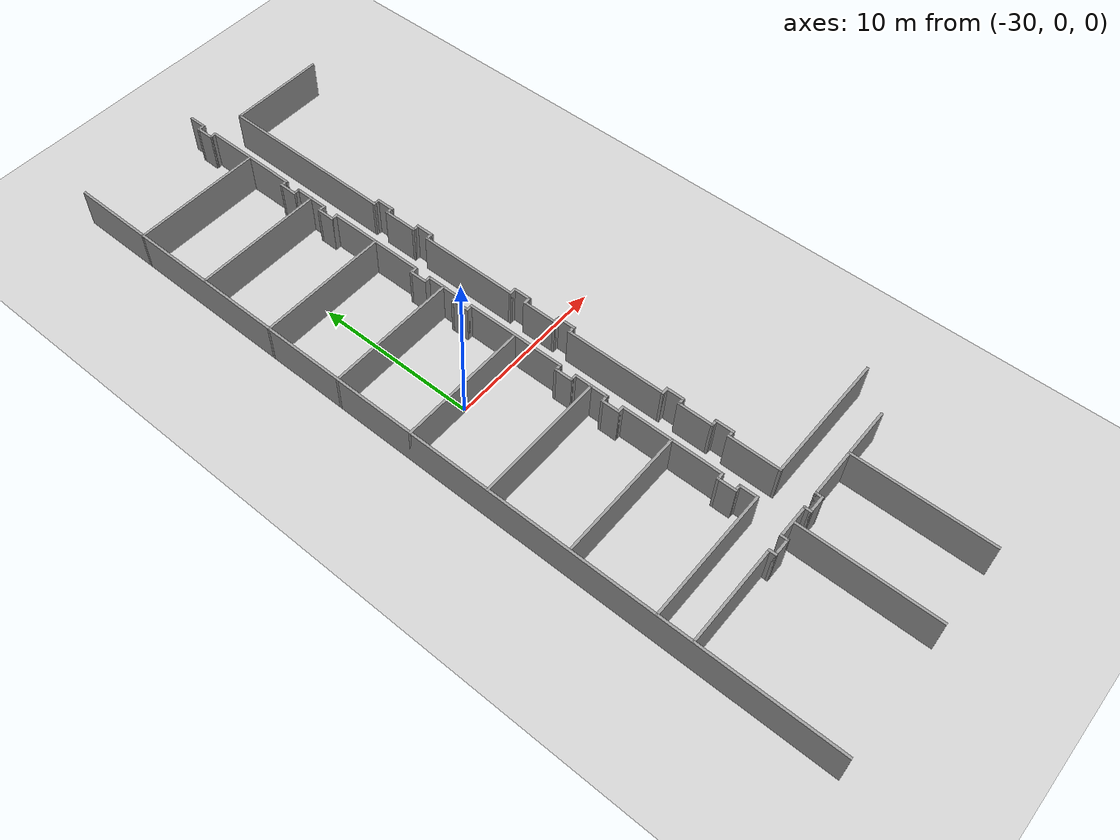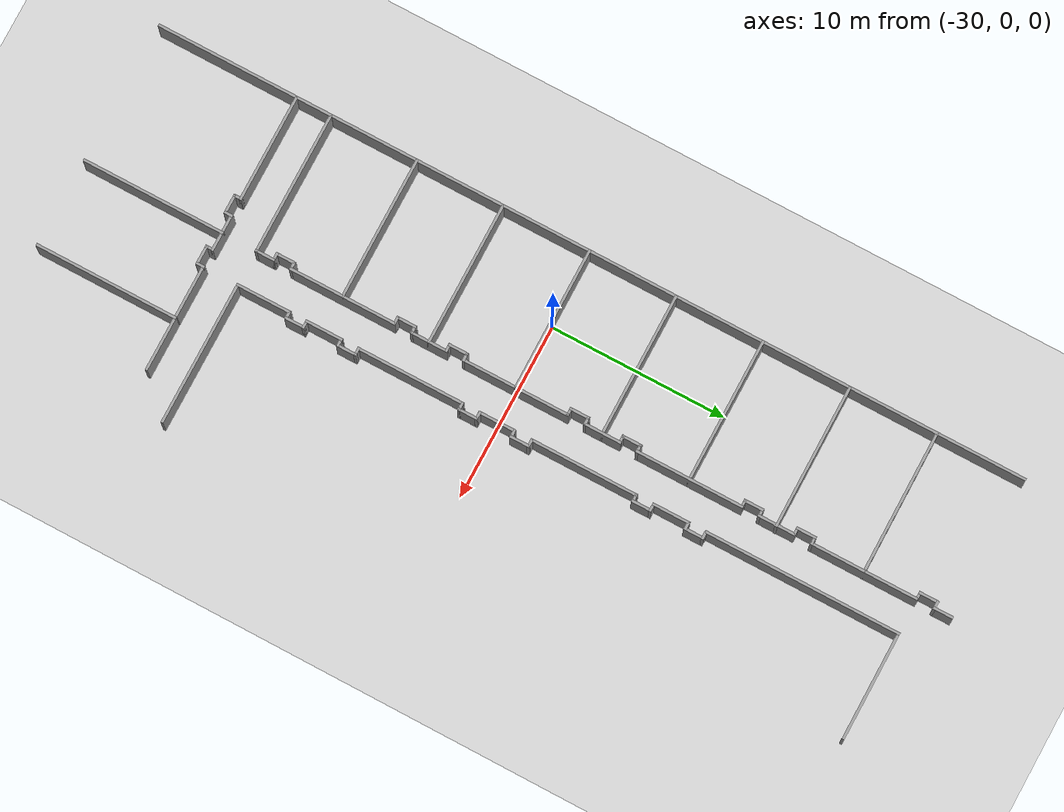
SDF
<sdf version="1.7">
 <world name="default">
  <model name="ground_plane">
   <static>1</static>
   <link name="link">
    <collision name="collision">
     <geometry><plane><normal>0 0 1</normal><size>100 100</size></plane></geometry>
     <surface>
      <contact><collide_bitmask>65535</collide_bitmask></contact>
      <friction><ode><mu>100</mu><mu2>50</mu2></ode></friction>
     </surface>
    </collision>
    <visual name="visual">
     <cast_shadows>0</cast_shadows>
     <geometry><plane><normal>0 0 1</normal><size>100 100</size></plane></geometry>
     <material>
      <script><uri>file://media/materials/scripts/gazebo.material</uri><name>Gazebo/Grey</name></script>
     </material>
    </visual>
   </link>
  </model>
  <model name="hotel_floor">
   <link name="Wall_10">
    <collision name="Wall_10_Collision">
     <geometry><box><size>8.15 0.15 2.5</size></box></geometry>
     <pose>0 0 1.25 0 -0 0</pose>
    </collision>
    <visual name="Wall_10_Visual">
     <pose>0 0 1.25 0 -0 0</pose>
     <geometry><box><size>8.15 0.15 2.5</size></box></geometry>
     <material>
      <script><uri>file://media/materials/scripts/gazebo.material</uri><name>Gazebo/Grey</name></script>
      <ambient>1 1 1 1</ambient>
     </material>
     <meta><layer>0</layer></meta>
    </visual>
    <pose>-30 -15 0 0 -0 3.14159</pose>
   </link>
   <link name="Wall_100">
    <collision name="Wall_100_Collision">
     <geometry><box><size>8.15 0.15 2.5</size></box></geometry>
     <pose>0 0 1.25 0 -0 0</pose>
    </collision>
    <visual name="Wall_100_Visual">
     <pose>0 0 1.25 0 -0 0</pose>
     <geometry><box><size>8.15 0.15 2.5</size></box></geometry>
     <material>
      <script><uri>file://media/materials/scripts/gazebo.material</uri><name>Gazebo/Grey</name></script>
      <ambient>1 1 1 1</ambient>
     </material>
     <meta><layer>0</layer></meta>
    </visual>
    <pose>-30 -10 0 0 -0 3.14159</pose>
   </link>
   <link name="Wall_102">
    <collision name="Wall_102_Collision">
     <geometry><box><size>8.15 0.15 2.5</size></box></geometry>
     <pose>0 0 1.25 0 -0 0</pose>
    </collision>
    <visual name="Wall_102_Visual">
     <pose>0 0 1.25 0 -0 0</pose>
     <geometry><box><size>8.15 0.15 2.5</size></box></geometry>
     <material>
      <script><uri>file://media/materials/scripts/gazebo.material</uri><name>Gazebo/Grey</name></script>
      <ambient>1 1 1 1</ambient>
     </material>
     <meta><layer>0</layer></meta>
    </visual>
    <pose>-30 -5 0 0 -0 3.14159</pose>
   </link>
   <link name="Wall_104">
    <collision name="Wall_104_Collision">
     <geometry><box><size>8.15 0.15 2.5</size></box></geometry>
     <pose>0 0 1.25 0 -0 0</pose>
    </collision>
    <visual name="Wall_104_Visual">
     <pose>0 0 1.25 0 -0 0</pose>
     <geometry><box><size>8.15 0.15 2.5</size></box></geometry>
     <material>
      <script><uri>file://media/materials/scripts/gazebo.material</uri><name>Gazebo/Grey</name></script>
      <ambient>1 1 1 1</ambient>
     </material>
     <meta><layer>0</layer></meta>
    </visual>
    <pose>-30 0 0 0 -0 3.14159</pose>
   </link>
   <link name="Wall_106">
    <collision name="Wall_106_Collision">
     <geometry><box><size>8.15 0.15 2.5</size></box></geometry>
     <pose>0 0 1.25 0 -0 0</pose>
    </collision>
    <visual name="Wall_106_Visual">
     <pose>0 0 1.25 0 -0 0</pose>
     <geometry><box><size>8.15 0.15 2.5</size></box></geometry>
     <material>
      <script><uri>file://media/materials/scripts/gazebo.material</uri><name>Gazebo/Grey</name></script>
      <ambient>1 1 1 1</ambient>
     </material>
     <meta><layer>0</layer></meta>
    </visual>
    <pose>-30 5 0 0 -0 3.14159</pose>
   </link>
   <link name="Wall_108">
    <collision name="Wall_108_Collision">
     <geometry><box><size>8.15 0.15 2.5</size></box></geometry>
     <pose>0 0 1.25 0 -0 0</pose>
    </collision>
    <visual name="Wall_108_Visual">
     <pose>0 0 1.25 0 -0 0</pose>
     <geometry><box><size>8.15 0.15 2.5</size></box></geometry>
     <material>
      <script><uri>file://media/materials/scripts/gazebo.material</uri><name>Gazebo/Grey</name></script>
      <ambient>1 1 1 1</ambient>
     </material>
     <meta><layer>0</layer></meta>
    </visual>
    <pose>-30 10 0 0 -0 3.14159</pose>
   </link>
   <link name="Wall_110">
    <collision name="Wall_110_Collision">
     <geometry><box><size>8.15 0.15 2.5</size></box></geometry>
     <pose>0 0 1.25 0 -0 0</pose>
    </collision>
    <visual name="Wall_110_Visual">
     <pose>0 0 1.25 0 -0 0</pose>
     <geometry><box><size>8.15 0.15 2.5</size></box></geometry>
     <material>
      <script><uri>file://media/materials/scripts/gazebo.material</uri><name>Gazebo/Grey</name></script>
      <ambient>1 1 1 1</ambient>
     </material>
     <meta><layer>0</layer></meta>
    </visual>
    <pose>-29.9799 15 0 0 -0 3.14159</pose>
   </link>
   <link name="Wall_112">
    <collision name="Wall_112_Collision">
     <geometry><box><size>8.15 0.15 2.5</size></box></geometry>
     <pose>0 0 1.25 0 -0 0</pose>
    </collision>
    <visual name="Wall_112_Visual">
     <pose>0 0 1.25 0 -0 0</pose>
     <geometry><box><size>8.15 0.15 2.5</size></box></geometry>
     <material>
      <script><uri>file://media/materials/scripts/gazebo.material</uri><name>Gazebo/Grey</name></script>
      <ambient>1 1 1 1</ambient>
     </material>
     <meta><layer>0</layer></meta>
    </visual>
    <pose>-30 20 0 0 -0 3.14159</pose>
   </link>
   <link name="Wall_142">
    <collision name="Wall_142_Collision">
     <geometry><box><size>1.15 0.15 2.5</size></box></geometry>
     <pose>0 0 1.25 0 -0 0</pose>
    </collision>
    <visual name="Wall_142_Visual">
     <pose>0 0 1.25 0 -0 0</pose>
     <geometry><box><size>1.15 0.15 2.5</size></box></geometry>
     <material>
      <script><uri>file://media/materials/scripts/gazebo.material</uri><name>Gazebo/Grey</name></script>
      <ambient>1 1 1 1</ambient>
     </material>
     <meta><layer>0</layer></meta>
    </visual>
    <pose>-26 24.5 0 0 -0 -1.5708</pose>
   </link>
   <link name="Wall_144">
    <collision name="Wall_144_Collision">
     <geometry><box><size>0.5 0.15 2.5</size></box></geometry>
     <pose>0 0 1.25 0 -0 0</pose>
    </collision>
    <visual name="Wall_144_Visual">
     <pose>0 0 1.25 0 -0 0</pose>
     <geometry><box><size>0.5 0.15 2.5</size></box></geometry>
     <material>
      <script><uri>file://media/materials/scripts/gazebo.material</uri><name>Gazebo/Grey</name></script>
      <ambient>1 1 1 1</ambient>
     </material>
     <meta><layer>0</layer></meta>
    </visual>
    <pose>-26.175 24 0 0 -0 3.14159</pose>
   </link>
   <link name="Wall_145">
    <collision name="Wall_145_Collision">
     <geometry><box><size>1.15 0.15 2.5</size></box></geometry>
     <pose>0 0 1.25 0 -0 0</pose>
    </collision>
    <visual name="Wall_145_Visual">
     <pose>0 0 1.25 0 -0 0</pose>
     <geometry><box><size>1.15 0.15 2.5</size></box></geometry>
     <material>
      <script><uri>file://media/materials/scripts/gazebo.material</uri><name>Gazebo/Grey</name></script>
      <ambient>1 1 1 1</ambient>
     </material>
     <meta><layer>0</layer></meta>
    </visual>
    <pose>-26.35 23.5 0 0 -0 -1.5708</pose>
   </link>
   <link name="Wall_147">
    <collision name="Wall_147_Collision">
     <geometry><box><size>0.5 0.15 2.5</size></box></geometry>
     <pose>0 0 1.25 0 -0 0</pose>
    </collision>
    <visual name="Wall_147_Visual">
     <pose>0 0 1.25 0 -0 0</pose>
     <geometry><box><size>0.5 0.15 2.5</size></box></geometry>
     <material>
      <script><uri>file://media/materials/scripts/gazebo.material</uri><name>Gazebo/Grey</name></script>
      <ambient>1 1 1 1</ambient>
     </material>
     <meta><layer>0</layer></meta>
    </visual>
    <pose>-26.175 23 0 0 -0 0</pose>
   </link>
   <link name="Wall_148">
    <collision name="Wall_148_Collision">
     <geometry><box><size>6.15 0.15 2.5</size></box></geometry>
     <pose>0 0 1.25 0 -0 0</pose>
    </collision>
    <visual name="Wall_148_Visual">
     <pose>0 0 1.25 0 -0 0</pose>
     <geometry><box><size>6.15 0.15 2.5</size></box></geometry>
     <material>
      <script><uri>file://media/materials/scripts/gazebo.material</uri><name>Gazebo/Grey</name></script>
      <ambient>1 1 1 1</ambient>
     </material>
     <meta><layer>0</layer></meta>
    </visual>
    <pose>-26 20 0 0 -0 -1.5708</pose>
   </link>
   <link name="Wall_150">
    <collision name="Wall_150_Collision">
     <geometry><box><size>0.5 0.15 2.5</size></box></geometry>
     <pose>0 0 1.25 0 -0 0</pose>
    </collision>
    <visual name="Wall_150_Visual">
     <pose>0 0 1.25 0 -0 0</pose>
     <geometry><box><size>0.5 0.15 2.5</size></box></geometry>
     <material>
      <script><uri>file://media/materials/scripts/gazebo.material</uri><name>Gazebo/Grey</name></script>
      <ambient>1 1 1 1</ambient>
     </material>
     <meta><layer>0</layer></meta>
    </visual>
    <pose>-26.175 17 0 0 -0 3.14159</pose>
   </link>
   <link name="Wall_151">
    <collision name="Wall_151_Collision">
     <geometry><box><size>1.15 0.15 2.5</size></box></geometry>
     <pose>0 0 1.25 0 -0 0</pose>
    </collision>
    <visual name="Wall_151_Visual">
     <pose>0 0 1.25 0 -0 0</pose>
     <geometry><box><size>1.15 0.15 2.5</size></box></geometry>
     <material>
      <script><uri>file://media/materials/scripts/gazebo.material</uri><name>Gazebo/Grey</name></script>
      <ambient>1 1 1 1</ambient>
     </material>
     <meta><layer>0</layer></meta>
    </visual>
    <pose>-26.35 16.5 0 0 -0 -1.5708</pose>
   </link>
   <link name="Wall_153">
    <collision name="Wall_153_Collision">
     <geometry><box><size>0.5 0.15 2.5</size></box></geometry>
     <pose>0 0 1.25 0 -0 0</pose>
    </collision>
    <visual name="Wall_153_Visual">
     <pose>0 0 1.25 0 -0 0</pose>
     <geometry><box><size>0.5 0.15 2.5</size></box></geometry>
     <material>
      <script><uri>file://media/materials/scripts/gazebo.material</uri><name>Gazebo/Grey</name></script>
      <ambient>1 1 1 1</ambient>
     </material>
     <meta><layer>0</layer></meta>
    </visual>
    <pose>-26.175 16 0 0 -0 0</pose>
   </link>
   <link name="Wall_154">
    <collision name="Wall_154_Collision">
     <geometry><box><size>2.15 0.15 2.5</size></box></geometry>
     <pose>0 0 1.25 0 -0 0</pose>
    </collision>
    <visual name="Wall_154_Visual">
     <pose>0 0 1.25 0 -0 0</pose>
     <geometry><box><size>2.15 0.15 2.5</size></box></geometry>
     <material>
      <script><uri>file://media/materials/scripts/gazebo.material</uri><name>Gazebo/Grey</name></script>
      <ambient>1 1 1 1</ambient>
     </material>
     <meta><layer>0</layer></meta>
    </visual>
    <pose>-26 15 0 0 -0 -1.5708</pose>
   </link>
   <link name="Wall_159">
    <collision name="Wall_159_Collision">
     <geometry><box><size>0.5 0.15 2.5</size></box></geometry>
     <pose>0 0 1.25 0 -0 0</pose>
    </collision>
    <visual name="Wall_159_Visual">
     <pose>0 0 1.25 0 -0 0</pose>
     <geometry><box><size>0.5 0.15 2.5</size></box></geometry>
     <material>
      <script><uri>file://media/materials/scripts/gazebo.material</uri><name>Gazebo/Grey</name></script>
      <ambient>1 1 1 1</ambient>
     </material>
     <meta><layer>0</layer></meta>
    </visual>
    <pose>-26.175 14 0 0 -0 3.14159</pose>
   </link>
   <link name="Wall_16">
    <collision name="Wall_16_Collision">
     <geometry><box><size>8.15 0.15 2.5</size></box></geometry>
     <pose>0 0 1.25 0 -0 0</pose>
    </collision>
    <visual name="Wall_16_Visual">
     <pose>0 0 1.25 0 -0 0</pose>
     <geometry><box><size>8.15 0.15 2.5</size></box></geometry>
     <material>
      <script><uri>file://media/materials/scripts/gazebo.material</uri><name>Gazebo/Grey</name></script>
      <ambient>1 1 1 1</ambient>
     </material>
     <meta><layer>0</layer></meta>
    </visual>
    <pose>-20 -15 0 0 -0 3.14159</pose>
   </link>
   <link name="Wall_160">
    <collision name="Wall_160_Collision">
     <geometry><box><size>1.15 0.15 2.5</size></box></geometry>
     <pose>0 0 1.25 0 -0 0</pose>
    </collision>
    <visual name="Wall_160_Visual">
     <pose>0 0 1.25 0 -0 0</pose>
     <geometry><box><size>1.15 0.15 2.5</size></box></geometry>
     <material>
      <script><uri>file://media/materials/scripts/gazebo.material</uri><name>Gazebo/Grey</name></script>
      <ambient>1 1 1 1</ambient>
     </material>
     <meta><layer>0</layer></meta>
    </visual>
    <pose>-26.35 13.5 0 0 -0 -1.5708</pose>
   </link>
   <link name="Wall_162">
    <collision name="Wall_162_Collision">
     <geometry><box><size>0.5 0.15 2.5</size></box></geometry>
     <pose>0 0 1.25 0 -0 0</pose>
    </collision>
    <visual name="Wall_162_Visual">
     <pose>0 0 1.25 0 -0 0</pose>
     <geometry><box><size>0.5 0.15 2.5</size></box></geometry>
     <material>
      <script><uri>file://media/materials/scripts/gazebo.material</uri><name>Gazebo/Grey</name></script>
      <ambient>1 1 1 1</ambient>
     </material>
     <meta><layer>0</layer></meta>
    </visual>
    <pose>-26.175 13 0 0 -0 0</pose>
   </link>
   <link name="Wall_163">
    <collision name="Wall_163_Collision">
     <geometry><box><size>6.15 0.15 2.5</size></box></geometry>
     <pose>0 0 1.25 0 -0 0</pose>
    </collision>
    <visual name="Wall_163_Visual">
     <pose>0 0 1.25 0 -0 0</pose>
     <geometry><box><size>6.15 0.15 2.5</size></box></geometry>
     <material>
      <script><uri>file://media/materials/scripts/gazebo.material</uri><name>Gazebo/Grey</name></script>
      <ambient>1 1 1 1</ambient>
     </material>
     <meta><layer>0</layer></meta>
    </visual>
    <pose>-26 10 0 0 -0 -1.5708</pose>
   </link>
   <link name="Wall_165">
    <collision name="Wall_165_Collision">
     <geometry><box><size>0.5 0.15 2.5</size></box></geometry>
     <pose>0 0 1.25 0 -0 0</pose>
    </collision>
    <visual name="Wall_165_Visual">
     <pose>0 0 1.25 0 -0 0</pose>
     <geometry><box><size>0.5 0.15 2.5</size></box></geometry>
     <material>
      <script><uri>file://media/materials/scripts/gazebo.material</uri><name>Gazebo/Grey</name></script>
      <ambient>1 1 1 1</ambient>
     </material>
     <meta><layer>0</layer></meta>
    </visual>
    <pose>-26.175 7 0 0 -0 3.14159</pose>
   </link>
   <link name="Wall_166">
    <collision name="Wall_166_Collision">
     <geometry><box><size>1.15 0.15 2.5</size></box></geometry>
     <pose>0 0 1.25 0 -0 0</pose>
    </collision>
    <visual name="Wall_166_Visual">
     <pose>0 0 1.25 0 -0 0</pose>
     <geometry><box><size>1.15 0.15 2.5</size></box></geometry>
     <material>
      <script><uri>file://media/materials/scripts/gazebo.material</uri><name>Gazebo/Grey</name></script>
      <ambient>1 1 1 1</ambient>
     </material>
     <meta><layer>0</layer></meta>
    </visual>
    <pose>-26.35 6.5 0 0 -0 -1.5708</pose>
   </link>
   <link name="Wall_168">
    <collision name="Wall_168_Collision">
     <geometry><box><size>0.5 0.15 2.5</size></box></geometry>
     <pose>0 0 1.25 0 -0 0</pose>
    </collision>
    <visual name="Wall_168_Visual">
     <pose>0 0 1.25 0 -0 0</pose>
     <geometry><box><size>0.5 0.15 2.5</size></box></geometry>
     <material>
      <script><uri>file://media/materials/scripts/gazebo.material</uri><name>Gazebo/Grey</name></script>
      <ambient>1 1 1 1</ambient>
     </material>
     <meta><layer>0</layer></meta>
    </visual>
    <pose>-26.175 6 0 0 -0 0</pose>
   </link>
   <link name="Wall_169">
    <collision name="Wall_169_Collision">
     <geometry><box><size>2.15 0.15 2.5</size></box></geometry>
     <pose>0 0 1.25 0 -0 0</pose>
    </collision>
    <visual name="Wall_169_Visual">
     <pose>0 0 1.25 0 -0 0</pose>
     <geometry><box><size>2.15 0.15 2.5</size></box></geometry>
     <material>
      <script><uri>file://media/materials/scripts/gazebo.material</uri><name>Gazebo/Grey</name></script>
      <ambient>1 1 1 1</ambient>
     </material>
     <meta><layer>0</layer></meta>
    </visual>
    <pose>-26 5 0 0 -0 -1.5708</pose>
   </link>
   <link name="Wall_174">
    <collision name="Wall_174_Collision">
     <geometry><box><size>0.5 0.15 2.5</size></box></geometry>
     <pose>0 0 1.25 0 -0 0</pose>
    </collision>
    <visual name="Wall_174_Visual">
     <pose>0 0 1.25 0 -0 0</pose>
     <geometry><box><size>0.5 0.15 2.5</size></box></geometry>
     <material>
      <script><uri>file://media/materials/scripts/gazebo.material</uri><name>Gazebo/Grey</name></script>
      <ambient>1 1 1 1</ambient>
     </material>
     <meta><layer>0</layer></meta>
    </visual>
    <pose>-26.175 4 0 0 -0 3.14159</pose>
   </link>
   <link name="Wall_175">
    <collision name="Wall_175_Collision">
     <geometry><box><size>1.15 0.15 2.5</size></box></geometry>
     <pose>0 0 1.25 0 -0 0</pose>
    </collision>
    <visual name="Wall_175_Visual">
     <pose>0 0 1.25 0 -0 0</pose>
     <geometry><box><size>1.15 0.15 2.5</size></box></geometry>
     <material>
      <script><uri>file://media/materials/scripts/gazebo.material</uri><name>Gazebo/Grey</name></script>
      <ambient>1 1 1 1</ambient>
     </material>
     <meta><layer>0</layer></meta>
    </visual>
    <pose>-26.35 3.5 0 0 -0 -1.5708</pose>
   </link>
   <link name="Wall_177">
    <collision name="Wall_177_Collision">
     <geometry><box><size>0.5 0.15 2.5</size></box></geometry>
     <pose>0 0 1.25 0 -0 0</pose>
    </collision>
    <visual name="Wall_177_Visual">
     <pose>0 0 1.25 0 -0 0</pose>
     <geometry><box><size>0.5 0.15 2.5</size></box></geometry>
     <material>
      <script><uri>file://media/materials/scripts/gazebo.material</uri><name>Gazebo/Grey</name></script>
      <ambient>1 1 1 1</ambient>
     </material>
     <meta><layer>0</layer></meta>
    </visual>
    <pose>-26.175 3 0 0 -0 0</pose>
   </link>
   <link name="Wall_178">
    <collision name="Wall_178_Collision">
     <geometry><box><size>6.15 0.15 2.5</size></box></geometry>
     <pose>0 0 1.25 0 -0 0</pose>
    </collision>
    <visual name="Wall_178_Visual">
     <pose>0 0 1.25 0 -0 0</pose>
     <geometry><box><size>6.15 0.15 2.5</size></box></geometry>
     <material>
      <script><uri>file://media/materials/scripts/gazebo.material</uri><name>Gazebo/Grey</name></script>
      <ambient>1 1 1 1</ambient>
     </material>
     <meta><layer>0</layer></meta>
    </visual>
    <pose>-26 0 0 0 -0 -1.5708</pose>
   </link>
   <link name="Wall_180">
    <collision name="Wall_180_Collision">
     <geometry><box><size>0.5 0.15 2.5</size></box></geometry>
     <pose>0 0 1.25 0 -0 0</pose>
    </collision>
    <visual name="Wall_180_Visual">
     <pose>0 0 1.25 0 -0 0</pose>
     <geometry><box><size>0.5 0.15 2.5</size></box></geometry>
     <material>
      <script><uri>file://media/materials/scripts/gazebo.material</uri><name>Gazebo/Grey</name></script>
      <ambient>1 1 1 1</ambient>
     </material>
     <meta><layer>0</layer></meta>
    </visual>
    <pose>-26.175 -3 0 0 -0 3.14159</pose>
   </link>
   <link name="Wall_181">
    <collision name="Wall_181_Collision">
     <geometry><box><size>1.15 0.15 2.5</size></box></geometry>
     <pose>0 0 1.25 0 -0 0</pose>
    </collision>
    <visual name="Wall_181_Visual">
     <pose>0 0 1.25 0 -0 0</pose>
     <geometry><box><size>1.15 0.15 2.5</size></box></geometry>
     <material>
      <script><uri>file://media/materials/scripts/gazebo.material</uri><name>Gazebo/Grey</name></script>
      <ambient>1 1 1 1</ambient>
     </material>
     <meta><layer>0</layer></meta>
    </visual>
    <pose>-26.35 -3.5 0 0 -0 -1.5708</pose>
   </link>
   <link name="Wall_183">
    <collision name="Wall_183_Collision">
     <geometry><box><size>0.5 0.15 2.5</size></box></geometry>
     <pose>0 0 1.25 0 -0 0</pose>
    </collision>
    <visual name="Wall_183_Visual">
     <pose>0 0 1.25 0 -0 0</pose>
     <geometry><box><size>0.5 0.15 2.5</size></box></geometry>
     <material>
      <script><uri>file://media/materials/scripts/gazebo.material</uri><name>Gazebo/Grey</name></script>
      <ambient>1 1 1 1</ambient>
     </material>
     <meta><layer>0</layer></meta>
    </visual>
    <pose>-26.175 -4 0 0 -0 0</pose>
   </link>
   <link name="Wall_184">
    <collision name="Wall_184_Collision">
     <geometry><box><size>2.15 0.15 2.5</size></box></geometry>
     <pose>0 0 1.25 0 -0 0</pose>
    </collision>
    <visual name="Wall_184_Visual">
     <pose>0 0 1.25 0 -0 0</pose>
     <geometry><box><size>2.15 0.15 2.5</size></box></geometry>
     <material>
      <script><uri>file://media/materials/scripts/gazebo.material</uri><name>Gazebo/Grey</name></script>
      <ambient>1 1 1 1</ambient>
     </material>
     <meta><layer>0</layer></meta>
    </visual>
    <pose>-26 -5 0 0 -0 -1.5708</pose>
   </link>
   <link name="Wall_186">
    <collision name="Wall_186_Collision">
     <geometry><box><size>0.5 0.15 2.5</size></box></geometry>
     <pose>0 0 1.25 0 -0 0</pose>
    </collision>
    <visual name="Wall_186_Visual">
     <pose>0 0 1.25 0 -0 0</pose>
     <geometry><box><size>0.5 0.15 2.5</size></box></geometry>
     <material>
      <script><uri>file://media/materials/scripts/gazebo.material</uri><name>Gazebo/Grey</name></script>
      <ambient>1 1 1 1</ambient>
     </material>
     <meta><layer>0</layer></meta>
    </visual>
    <pose>-26.175 -6 0 0 -0 3.14159</pose>
   </link>
   <link name="Wall_187">
    <collision name="Wall_187_Collision">
     <geometry><box><size>1.15 0.15 2.5</size></box></geometry>
     <pose>0 0 1.25 0 -0 0</pose>
    </collision>
    <visual name="Wall_187_Visual">
     <pose>0 0 1.25 0 -0 0</pose>
     <geometry><box><size>1.15 0.15 2.5</size></box></geometry>
     <material>
      <script><uri>file://media/materials/scripts/gazebo.material</uri><name>Gazebo/Grey</name></script>
      <ambient>1 1 1 1</ambient>
     </material>
     <meta><layer>0</layer></meta>
    </visual>
    <pose>-26.35 -6.5 0 0 -0 -1.5708</pose>
   </link>
   <link name="Wall_189">
    <collision name="Wall_189_Collision">
     <geometry><box><size>0.5 0.15 2.5</size></box></geometry>
     <pose>0 0 1.25 0 -0 0</pose>
    </collision>
    <visual name="Wall_189_Visual">
     <pose>0 0 1.25 0 -0 0</pose>
     <geometry><box><size>0.5 0.15 2.5</size></box></geometry>
     <material>
      <script><uri>file://media/materials/scripts/gazebo.material</uri><name>Gazebo/Grey</name></script>
      <ambient>1 1 1 1</ambient>
     </material>
     <meta><layer>0</layer></meta>
    </visual>
    <pose>-26.175 -7 0 0 -0 0</pose>
   </link>
   <link name="Wall_190">
    <collision name="Wall_190_Collision">
     <geometry><box><size>6.15 0.15 2.5</size></box></geometry>
     <pose>0 0 1.25 0 -0 0</pose>
    </collision>
    <visual name="Wall_190_Visual">
     <pose>0 0 1.25 0 -0 0</pose>
     <geometry><box><size>6.15 0.15 2.5</size></box></geometry>
     <material>
      <script><uri>file://media/materials/scripts/gazebo.material</uri><name>Gazebo/Grey</name></script>
      <ambient>1 1 1 1</ambient>
     </material>
     <meta><layer>0</layer></meta>
    </visual>
    <pose>-26 -10 0 0 -0 -1.5708</pose>
   </link>
   <link name="Wall_192">
    <collision name="Wall_192_Collision">
     <geometry><box><size>0.5 0.15 2.5</size></box></geometry>
     <pose>0 0 1.25 0 -0 0</pose>
    </collision>
    <visual name="Wall_192_Visual">
     <pose>0 0 1.25 0 -0 0</pose>
     <geometry><box><size>0.5 0.15 2.5</size></box></geometry>
     <material>
      <script><uri>file://media/materials/scripts/gazebo.material</uri><name>Gazebo/Grey</name></script>
      <ambient>1 1 1 1</ambient>
     </material>
     <meta><layer>0</layer></meta>
    </visual>
    <pose>-26.175 -13 0 0 -0 3.14159</pose>
   </link>
   <link name="Wall_193">
    <collision name="Wall_193_Collision">
     <geometry><box><size>1.15 0.15 2.5</size></box></geometry>
     <pose>0 0 1.25 0 -0 0</pose>
    </collision>
    <visual name="Wall_193_Visual">
     <pose>0 0 1.25 0 -0 0</pose>
     <geometry><box><size>1.15 0.15 2.5</size></box></geometry>
     <material>
      <script><uri>file://media/materials/scripts/gazebo.material</uri><name>Gazebo/Grey</name></script>
      <ambient>1 1 1 1</ambient>
     </material>
     <meta><layer>0</layer></meta>
    </visual>
    <pose>-26.35 -13.5 0 0 -0 -1.5708</pose>
   </link>
   <link name="Wall_195">
    <collision name="Wall_195_Collision">
     <geometry><box><size>0.5 0.15 2.5</size></box></geometry>
     <pose>0 0 1.25 0 -0 0</pose>
    </collision>
    <visual name="Wall_195_Visual">
     <pose>0 0 1.25 0 -0 0</pose>
     <geometry><box><size>0.5 0.15 2.5</size></box></geometry>
     <material>
      <script><uri>file://media/materials/scripts/gazebo.material</uri><name>Gazebo/Grey</name></script>
      <ambient>1 1 1 1</ambient>
     </material>
     <meta><layer>0</layer></meta>
    </visual>
    <pose>-26.175 -14 0 0 -0 0</pose>
   </link>
   <link name="Wall_196">
    <collision name="Wall_196_Collision">
     <geometry><box><size>1.15 0.15 2.5</size></box></geometry>
     <pose>0 0 1.25 0 -0 0</pose>
    </collision>
    <visual name="Wall_196_Visual">
     <pose>0 0 1.25 0 -0 0</pose>
     <geometry><box><size>1.15 0.15 2.5</size></box></geometry>
     <material>
      <script><uri>file://media/materials/scripts/gazebo.material</uri><name>Gazebo/Grey</name></script>
      <ambient>1 1 1 1</ambient>
     </material>
     <meta><layer>0</layer></meta>
    </visual>
    <pose>-26 -14.5 0 0 -0 -1.5708</pose>
   </link>
   <link name="Wall_198">
    <collision name="Wall_198_Collision">
     <geometry><box><size>6.15 0.15 2.5</size></box></geometry>
     <pose>0 0 1.25 0 -0 0</pose>
    </collision>
    <visual name="Wall_198_Visual">
     <pose>0 0 1.25 0 -0 0</pose>
     <geometry><box><size>6.15 0.15 2.5</size></box></geometry>
     <material>
      <script><uri>file://media/materials/scripts/gazebo.material</uri><name>Gazebo/Grey</name></script>
      <ambient>1 1 1 1</ambient>
     </material>
     <meta><layer>0</layer></meta>
    </visual>
    <pose>-31 -17 0 0 -0 0</pose>
   </link>
   <link name="Wall_2">
    <collision name="Wall_2_Collision">
     <geometry><box><size>50.15 0.15 2.5</size></box></geometry>
     <pose>0 0 1.25 0 -0 0</pose>
    </collision>
    <visual name="Wall_2_Visual">
     <pose>0 0 1.25 0 -0 0</pose>
     <geometry><box><size>50.15 0.15 2.5</size></box></geometry>
     <material>
      <script><uri>file://media/materials/scripts/gazebo.material</uri><name>Gazebo/Grey</name></script>
      <ambient>1 1 1 1</ambient>
     </material>
     <meta><layer>0</layer></meta>
    </visual>
    <pose>-34 0 0 0 -0 -1.5708</pose>
   </link>
   <link name="Wall_200">
    <collision name="Wall_200_Collision">
     <geometry><box><size>0.5 0.15 2.5</size></box></geometry>
     <pose>0 0 1.25 0 -0 0</pose>
    </collision>
    <visual name="Wall_200_Visual">
     <pose>0 0 1.25 0 -0 0</pose>
     <geometry><box><size>0.5 0.15 2.5</size></box></geometry>
     <material>
      <script><uri>file://media/materials/scripts/gazebo.material</uri><name>Gazebo/Grey</name></script>
      <ambient>1 1 1 1</ambient>
     </material>
     <meta><layer>0</layer></meta>
    </visual>
    <pose>-28 -17.175 0 0 -0 -1.5708</pose>
   </link>
   <link name="Wall_201">
    <collision name="Wall_201_Collision">
     <geometry><box><size>1.15 0.15 2.5</size></box></geometry>
     <pose>0 0 1.25 0 -0 0</pose>
    </collision>
    <visual name="Wall_201_Visual">
     <pose>0 0 1.25 0 -0 0</pose>
     <geometry><box><size>1.15 0.15 2.5</size></box></geometry>
     <material>
      <script><uri>file://media/materials/scripts/gazebo.material</uri><name>Gazebo/Grey</name></script>
      <ambient>1 1 1 1</ambient>
     </material>
     <meta><layer>0</layer></meta>
    </visual>
    <pose>-27.5 -17.35 0 0 -0 0</pose>
   </link>
   <link name="Wall_203">
    <collision name="Wall_203_Collision">
     <geometry><box><size>0.5 0.15 2.5</size></box></geometry>
     <pose>0 0 1.25 0 -0 0</pose>
    </collision>
    <visual name="Wall_203_Visual">
     <pose>0 0 1.25 0 -0 0</pose>
     <geometry><box><size>0.5 0.15 2.5</size></box></geometry>
     <material>
      <script><uri>file://media/materials/scripts/gazebo.material</uri><name>Gazebo/Grey</name></script>
      <ambient>1 1 1 1</ambient>
     </material>
     <meta><layer>0</layer></meta>
    </visual>
    <pose>-27 -17.175 0 0 -0 1.5708</pose>
   </link>
   <link name="Wall_204">
    <collision name="Wall_204_Collision">
     <geometry><box><size>2.15 0.15 2.5</size></box></geometry>
     <pose>0 0 1.25 0 -0 0</pose>
    </collision>
    <visual name="Wall_204_Visual">
     <pose>0 0 1.25 0 -0 0</pose>
     <geometry><box><size>2.15 0.15 2.5</size></box></geometry>
     <material>
      <script><uri>file://media/materials/scripts/gazebo.material</uri><name>Gazebo/Grey</name></script>
      <ambient>1 1 1 1</ambient>
     </material>
     <meta><layer>0</layer></meta>
    </visual>
    <pose>-26 -17 0 0 -0 0</pose>
   </link>
   <link name="Wall_206">
    <collision name="Wall_206_Collision">
     <geometry><box><size>0.5 0.15 2.5</size></box></geometry>
     <pose>0 0 1.25 0 -0 0</pose>
    </collision>
    <visual name="Wall_206_Visual">
     <pose>0 0 1.25 0 -0 0</pose>
     <geometry><box><size>0.5 0.15 2.5</size></box></geometry>
     <material>
      <script><uri>file://media/materials/scripts/gazebo.material</uri><name>Gazebo/Grey</name></script>
      <ambient>1 1 1 1</ambient>
     </material>
     <meta><layer>0</layer></meta>
    </visual>
    <pose>-25 -17.175 0 0 -0 -1.5708</pose>
   </link>
   <link name="Wall_207">
    <collision name="Wall_207_Collision">
     <geometry><box><size>1.15 0.15 2.5</size></box></geometry>
     <pose>0 0 1.25 0 -0 0</pose>
    </collision>
    <visual name="Wall_207_Visual">
     <pose>0 0 1.25 0 -0 0</pose>
     <geometry><box><size>1.15 0.15 2.5</size></box></geometry>
     <material>
      <script><uri>file://media/materials/scripts/gazebo.material</uri><name>Gazebo/Grey</name></script>
      <ambient>1 1 1 1</ambient>
     </material>
     <meta><layer>0</layer></meta>
    </visual>
    <pose>-24.5 -17.35 0 0 -0 0</pose>
   </link>
   <link name="Wall_209">
    <collision name="Wall_209_Collision">
     <geometry><box><size>0.5 0.15 2.5</size></box></geometry>
     <pose>0 0 1.25 0 -0 0</pose>
    </collision>
    <visual name="Wall_209_Visual">
     <pose>0 0 1.25 0 -0 0</pose>
     <geometry><box><size>0.5 0.15 2.5</size></box></geometry>
     <material>
      <script><uri>file://media/materials/scripts/gazebo.material</uri><name>Gazebo/Grey</name></script>
      <ambient>1 1 1 1</ambient>
     </material>
     <meta><layer>0</layer></meta>
    </visual>
    <pose>-24 -17.175 0 0 -0 1.5708</pose>
   </link>
   <link name="Wall_210">
    <collision name="Wall_210_Collision">
     <geometry><box><size>6.15 0.15 2.5</size></box></geometry>
     <pose>0 0 1.25 0 -0 0</pose>
    </collision>
    <visual name="Wall_210_Visual">
     <pose>0 0 1.25 0 -0 0</pose>
     <geometry><box><size>6.15 0.15 2.5</size></box></geometry>
     <material>
      <script><uri>file://media/materials/scripts/gazebo.material</uri><name>Gazebo/Grey</name></script>
      <ambient>1 1 1 1</ambient>
     </material>
     <meta><layer>0</layer></meta>
    </visual>
    <pose>-21 -17 0 0 -0 0</pose>
   </link>
   <link name="Wall_341">
    <collision name="Wall_341_Collision">
     <geometry><box><size>3.15 0.15 2.5</size></box></geometry>
     <pose>0 0 1.25 0 -0 0</pose>
    </collision>
    <visual name="Wall_341_Visual">
     <pose>0 0 1.25 0 -0 0</pose>
     <geometry><box><size>3.15 0.15 2.5</size></box></geometry>
     <material>
      <script><uri>file://media/materials/scripts/gazebo.material</uri><name>Gazebo/Grey</name></script>
      <ambient>1 1 1 1</ambient>
     </material>
     <meta><layer>0</layer></meta>
    </visual>
    <pose>-24 -13.5 0 0 -0 1.5708</pose>
   </link>
   <link name="Wall_343">
    <collision name="Wall_343_Collision">
     <geometry><box><size>0.5 0.15 2.5</size></box></geometry>
     <pose>0 0 1.25 0 -0 0</pose>
    </collision>
    <visual name="Wall_343_Visual">
     <pose>0 0 1.25 0 -0 0</pose>
     <geometry><box><size>0.5 0.15 2.5</size></box></geometry>
     <material>
      <script><uri>file://media/materials/scripts/gazebo.material</uri><name>Gazebo/Grey</name></script>
      <ambient>1 1 1 1</ambient>
     </material>
     <meta><layer>0</layer></meta>
    </visual>
    <pose>-23.825 -12 0 0 -0 0</pose>
   </link>
   <link name="Wall_344">
    <collision name="Wall_344_Collision">
     <geometry><box><size>1.15 0.15 2.5</size></box></geometry>
     <pose>0 0 1.25 0 -0 0</pose>
    </collision>
    <visual name="Wall_344_Visual">
     <pose>0 0 1.25 0 -0 0</pose>
     <geometry><box><size>1.15 0.15 2.5</size></box></geometry>
     <material>
      <script><uri>file://media/materials/scripts/gazebo.material</uri><name>Gazebo/Grey</name></script>
      <ambient>1 1 1 1</ambient>
     </material>
     <meta><layer>0</layer></meta>
    </visual>
    <pose>-23.65 -11.5 0 0 -0 1.5708</pose>
   </link>
   <link name="Wall_346">
    <collision name="Wall_346_Collision">
     <geometry><box><size>0.5 0.15 2.5</size></box></geometry>
     <pose>0 0 1.25 0 -0 0</pose>
    </collision>
    <visual name="Wall_346_Visual">
     <pose>0 0 1.25 0 -0 0</pose>
     <geometry><box><size>0.5 0.15 2.5</size></box></geometry>
     <material>
      <script><uri>file://media/materials/scripts/gazebo.material</uri><name>Gazebo/Grey</name></script>
      <ambient>1 1 1 1</ambient>
     </material>
     <meta><layer>0</layer></meta>
    </visual>
    <pose>-23.825 -11 0 0 -0 3.14159</pose>
   </link>
   <link name="Wall_347">
    <collision name="Wall_347_Collision">
     <geometry><box><size>2.15 0.15 2.5</size></box></geometry>
     <pose>0 0 1.25 0 -0 0</pose>
    </collision>
    <visual name="Wall_347_Visual">
     <pose>0 0 1.25 0 -0 0</pose>
     <geometry><box><size>2.15 0.15 2.5</size></box></geometry>
     <material>
      <script><uri>file://media/materials/scripts/gazebo.material</uri><name>Gazebo/Grey</name></script>
      <ambient>1 1 1 1</ambient>
     </material>
     <meta><layer>0</layer></meta>
    </visual>
    <pose>-24 -10 0 0 -0 1.5708</pose>
   </link>
   <link name="Wall_349">
    <collision name="Wall_349_Collision">
     <geometry><box><size>0.5 0.15 2.5</size></box></geometry>
     <pose>0 0 1.25 0 -0 0</pose>
    </collision>
    <visual name="Wall_349_Visual">
     <pose>0 0 1.25 0 -0 0</pose>
     <geometry><box><size>0.5 0.15 2.5</size></box></geometry>
     <material>
      <script><uri>file://media/materials/scripts/gazebo.material</uri><name>Gazebo/Grey</name></script>
      <ambient>1 1 1 1</ambient>
     </material>
     <meta><layer>0</layer></meta>
    </visual>
    <pose>-23.825 -9 0 0 -0 0</pose>
   </link>
   <link name="Wall_350">
    <collision name="Wall_350_Collision">
     <geometry><box><size>1.15 0.15 2.5</size></box></geometry>
     <pose>0 0 1.25 0 -0 0</pose>
    </collision>
    <visual name="Wall_350_Visual">
     <pose>0 0 1.25 0 -0 0</pose>
     <geometry><box><size>1.15 0.15 2.5</size></box></geometry>
     <material>
      <script><uri>file://media/materials/scripts/gazebo.material</uri><name>Gazebo/Grey</name></script>
      <ambient>1 1 1 1</ambient>
     </material>
     <meta><layer>0</layer></meta>
    </visual>
    <pose>-23.65 -8.5 0 0 -0 1.5708</pose>
   </link>
   <link name="Wall_352">
    <collision name="Wall_352_Collision">
     <geometry><box><size>0.5 0.15 2.5</size></box></geometry>
     <pose>0 0 1.25 0 -0 0</pose>
    </collision>
    <visual name="Wall_352_Visual">
     <pose>0 0 1.25 0 -0 0</pose>
     <geometry><box><size>0.5 0.15 2.5</size></box></geometry>
     <material>
      <script><uri>file://media/materials/scripts/gazebo.material</uri><name>Gazebo/Grey</name></script>
      <ambient>1 1 1 1</ambient>
     </material>
     <meta><layer>0</layer></meta>
    </visual>
    <pose>-23.825 -8 0 0 -0 3.14159</pose>
   </link>
   <link name="Wall_353">
    <collision name="Wall_353_Collision">
     <geometry><box><size>6.15 0.15 2.5</size></box></geometry>
     <pose>0 0 1.25 0 -0 0</pose>
    </collision>
    <visual name="Wall_353_Visual">
     <pose>0 0 1.25 0 -0 0</pose>
     <geometry><box><size>6.15 0.15 2.5</size></box></geometry>
     <material>
      <script><uri>file://media/materials/scripts/gazebo.material</uri><name>Gazebo/Grey</name></script>
      <ambient>1 1 1 1</ambient>
     </material>
     <meta><layer>0</layer></meta>
    </visual>
    <pose>-24 -5 0 0 -0 1.5708</pose>
   </link>
   <link name="Wall_355">
    <collision name="Wall_355_Collision">
     <geometry><box><size>0.5 0.15 2.5</size></box></geometry>
     <pose>0 0 1.25 0 -0 0</pose>
    </collision>
    <visual name="Wall_355_Visual">
     <pose>0 0 1.25 0 -0 0</pose>
     <geometry><box><size>0.5 0.15 2.5</size></box></geometry>
     <material>
      <script><uri>file://media/materials/scripts/gazebo.material</uri><name>Gazebo/Grey</name></script>
      <ambient>1 1 1 1</ambient>
     </material>
     <meta><layer>0</layer></meta>
    </visual>
    <pose>-23.825 -2 0 0 -0 0</pose>
   </link>
   <link name="Wall_356">
    <collision name="Wall_356_Collision">
     <geometry><box><size>1.15 0.15 2.5</size></box></geometry>
     <pose>0 0 1.25 0 -0 0</pose>
    </collision>
    <visual name="Wall_356_Visual">
     <pose>0 0 1.25 0 -0 0</pose>
     <geometry><box><size>1.15 0.15 2.5</size></box></geometry>
     <material>
      <script><uri>file://media/materials/scripts/gazebo.material</uri><name>Gazebo/Grey</name></script>
      <ambient>1 1 1 1</ambient>
     </material>
     <meta><layer>0</layer></meta>
    </visual>
    <pose>-23.65 -1.5 0 0 -0 1.5708</pose>
   </link>
   <link name="Wall_358">
    <collision name="Wall_358_Collision">
     <geometry><box><size>0.5 0.15 2.5</size></box></geometry>
     <pose>0 0 1.25 0 -0 0</pose>
    </collision>
    <visual name="Wall_358_Visual">
     <pose>0 0 1.25 0 -0 0</pose>
     <geometry><box><size>0.5 0.15 2.5</size></box></geometry>
     <material>
      <script><uri>file://media/materials/scripts/gazebo.material</uri><name>Gazebo/Grey</name></script>
      <ambient>1 1 1 1</ambient>
     </material>
     <meta><layer>0</layer></meta>
    </visual>
    <pose>-23.825 -1 0 0 -0 3.14159</pose>
   </link>
   <link name="Wall_359">
    <collision name="Wall_359_Collision">
     <geometry><box><size>2.15 0.15 2.5</size></box></geometry>
     <pose>0 0 1.25 0 -0 0</pose>
    </collision>
    <visual name="Wall_359_Visual">
     <pose>0 0 1.25 0 -0 0</pose>
     <geometry><box><size>2.15 0.15 2.5</size></box></geometry>
     <material>
      <script><uri>file://media/materials/scripts/gazebo.material</uri><name>Gazebo/Grey</name></script>
      <ambient>1 1 1 1</ambient>
     </material>
     <meta><layer>0</layer></meta>
    </visual>
    <pose>-24 0 0 0 -0 1.5708</pose>
   </link>
   <link name="Wall_361">
    <collision name="Wall_361_Collision">
     <geometry><box><size>0.5 0.15 2.5</size></box></geometry>
     <pose>0 0 1.25 0 -0 0</pose>
    </collision>
    <visual name="Wall_361_Visual">
     <pose>0 0 1.25 0 -0 0</pose>
     <geometry><box><size>0.5 0.15 2.5</size></box></geometry>
     <material>
      <script><uri>file://media/materials/scripts/gazebo.material</uri><name>Gazebo/Grey</name></script>
      <ambient>1 1 1 1</ambient>
     </material>
     <meta><layer>0</layer></meta>
    </visual>
    <pose>-23.825 1 0 0 -0 0</pose>
   </link>
   <link name="Wall_362">
    <collision name="Wall_362_Collision">
     <geometry><box><size>1.15 0.15 2.5</size></box></geometry>
     <pose>0 0 1.25 0 -0 0</pose>
    </collision>
    <visual name="Wall_362_Visual">
     <pose>0 0 1.25 0 -0 0</pose>
     <geometry><box><size>1.15 0.15 2.5</size></box></geometry>
     <material>
      <script><uri>file://media/materials/scripts/gazebo.material</uri><name>Gazebo/Grey</name></script>
      <ambient>1 1 1 1</ambient>
     </material>
     <meta><layer>0</layer></meta>
    </visual>
    <pose>-23.65 1.5 0 0 -0 1.5708</pose>
   </link>
   <link name="Wall_364">
    <collision name="Wall_364_Collision">
     <geometry><box><size>0.5 0.15 2.5</size></box></geometry>
     <pose>0 0 1.25 0 -0 0</pose>
    </collision>
    <visual name="Wall_364_Visual">
     <pose>0 0 1.25 0 -0 0</pose>
     <geometry><box><size>0.5 0.15 2.5</size></box></geometry>
     <material>
      <script><uri>file://media/materials/scripts/gazebo.material</uri><name>Gazebo/Grey</name></script>
      <ambient>1 1 1 1</ambient>
     </material>
     <meta><layer>0</layer></meta>
    </visual>
    <pose>-23.825 2 0 0 -0 3.14159</pose>
   </link>
   <link name="Wall_365">
    <collision name="Wall_365_Collision">
     <geometry><box><size>6.15 0.15 2.5</size></box></geometry>
     <pose>0 0 1.25 0 -0 0</pose>
    </collision>
    <visual name="Wall_365_Visual">
     <pose>0 0 1.25 0 -0 0</pose>
     <geometry><box><size>6.15 0.15 2.5</size></box></geometry>
     <material>
      <script><uri>file://media/materials/scripts/gazebo.material</uri><name>Gazebo/Grey</name></script>
      <ambient>1 1 1 1</ambient>
     </material>
     <meta><layer>0</layer></meta>
    </visual>
    <pose>-24 5 0 0 -0 1.5708</pose>
   </link>
   <link name="Wall_367">
    <collision name="Wall_367_Collision">
     <geometry><box><size>0.5 0.15 2.5</size></box></geometry>
     <pose>0 0 1.25 0 -0 0</pose>
    </collision>
    <visual name="Wall_367_Visual">
     <pose>0 0 1.25 0 -0 0</pose>
     <geometry><box><size>0.5 0.15 2.5</size></box></geometry>
     <material>
      <script><uri>file://media/materials/scripts/gazebo.material</uri><name>Gazebo/Grey</name></script>
      <ambient>1 1 1 1</ambient>
     </material>
     <meta><layer>0</layer></meta>
    </visual>
    <pose>-23.825 8 0 0 -0 0</pose>
   </link>
   <link name="Wall_368">
    <collision name="Wall_368_Collision">
     <geometry><box><size>1.15 0.15 2.5</size></box></geometry>
     <pose>0 0 1.25 0 -0 0</pose>
    </collision>
    <visual name="Wall_368_Visual">
     <pose>0 0 1.25 0 -0 0</pose>
     <geometry><box><size>1.15 0.15 2.5</size></box></geometry>
     <material>
      <script><uri>file://media/materials/scripts/gazebo.material</uri><name>Gazebo/Grey</name></script>
      <ambient>1 1 1 1</ambient>
     </material>
     <meta><layer>0</layer></meta>
    </visual>
    <pose>-23.65 8.5 0 0 -0 1.5708</pose>
   </link>
   <link name="Wall_370">
    <collision name="Wall_370_Collision">
     <geometry><box><size>0.5 0.15 2.5</size></box></geometry>
     <pose>0 0 1.25 0 -0 0</pose>
    </collision>
    <visual name="Wall_370_Visual">
     <pose>0 0 1.25 0 -0 0</pose>
     <geometry><box><size>0.5 0.15 2.5</size></box></geometry>
     <material>
      <script><uri>file://media/materials/scripts/gazebo.material</uri><name>Gazebo/Grey</name></script>
      <ambient>1 1 1 1</ambient>
     </material>
     <meta><layer>0</layer></meta>
    </visual>
    <pose>-23.825 9 0 0 -0 3.14159</pose>
   </link>
   <link name="Wall_371">
    <collision name="Wall_371_Collision">
     <geometry><box><size>2.15 0.15 2.5</size></box></geometry>
     <pose>0 0 1.25 0 -0 0</pose>
    </collision>
    <visual name="Wall_371_Visual">
     <pose>0 0 1.25 0 -0 0</pose>
     <geometry><box><size>2.15 0.15 2.5</size></box></geometry>
     <material>
      <script><uri>file://media/materials/scripts/gazebo.material</uri><name>Gazebo/Grey</name></script>
      <ambient>1 1 1 1</ambient>
     </material>
     <meta><layer>0</layer></meta>
    </visual>
    <pose>-24 10 0 0 -0 1.5708</pose>
   </link>
   <link name="Wall_373">
    <collision name="Wall_373_Collision">
     <geometry><box><size>0.5 0.15 2.5</size></box></geometry>
     <pose>0 0 1.25 0 -0 0</pose>
    </collision>
    <visual name="Wall_373_Visual">
     <pose>0 0 1.25 0 -0 0</pose>
     <geometry><box><size>0.5 0.15 2.5</size></box></geometry>
     <material>
      <script><uri>file://media/materials/scripts/gazebo.material</uri><name>Gazebo/Grey</name></script>
      <ambient>1 1 1 1</ambient>
     </material>
     <meta><layer>0</layer></meta>
    </visual>
    <pose>-23.825 11 0 0 -0 0</pose>
   </link>
   <link name="Wall_374">
    <collision name="Wall_374_Collision">
     <geometry><box><size>1.15 0.15 2.5</size></box></geometry>
     <pose>0 0 1.25 0 -0 0</pose>
    </collision>
    <visual name="Wall_374_Visual">
     <pose>0 0 1.25 0 -0 0</pose>
     <geometry><box><size>1.15 0.15 2.5</size></box></geometry>
     <material>
      <script><uri>file://media/materials/scripts/gazebo.material</uri><name>Gazebo/Grey</name></script>
      <ambient>1 1 1 1</ambient>
     </material>
     <meta><layer>0</layer></meta>
    </visual>
    <pose>-23.65 11.5 0 0 -0 1.5708</pose>
   </link>
   <link name="Wall_376">
    <collision name="Wall_376_Collision">
     <geometry><box><size>0.5 0.15 2.5</size></box></geometry>
     <pose>0 0 1.25 0 -0 0</pose>
    </collision>
    <visual name="Wall_376_Visual">
     <pose>0 0 1.25 0 -0 0</pose>
     <geometry><box><size>0.5 0.15 2.5</size></box></geometry>
     <material>
      <script><uri>file://media/materials/scripts/gazebo.material</uri><name>Gazebo/Grey</name></script>
      <ambient>1 1 1 1</ambient>
     </material>
     <meta><layer>0</layer></meta>
    </visual>
    <pose>-23.825 12 0 0 -0 3.14159</pose>
   </link>
   <link name="Wall_377">
    <collision name="Wall_377_Collision">
     <geometry><box><size>11.15 0.15 2.5</size></box></geometry>
     <pose>0 0 1.25 0 -0 0</pose>
    </collision>
    <visual name="Wall_377_Visual">
     <pose>0 0 1.25 0 -0 0</pose>
     <geometry><box><size>11.15 0.15 2.5</size></box></geometry>
     <material>
      <script><uri>file://media/materials/scripts/gazebo.material</uri><name>Gazebo/Grey</name></script>
      <ambient>1 1 1 1</ambient>
     </material>
     <meta><layer>0</layer></meta>
    </visual>
    <pose>-24 17.5 0 0 -0 1.5708</pose>
   </link>
   <link name="Wall_379">
    <collision name="Wall_379_Collision">
     <geometry><box><size>6.15 0.15 2.5</size></box></geometry>
     <pose>0 0 1.25 0 -0 0</pose>
    </collision>
    <visual name="Wall_379_Visual">
     <pose>0 0 1.25 0 -0 0</pose>
     <geometry><box><size>6.15 0.15 2.5</size></box></geometry>
     <material>
      <script><uri>file://media/materials/scripts/gazebo.material</uri><name>Gazebo/Grey</name></script>
      <ambient>1 1 1 1</ambient>
     </material>
     <meta><layer>0</layer></meta>
    </visual>
    <pose>-21 23 0 0 -0 0</pose>
   </link>
   <link name="Wall_96">
    <collision name="Wall_96_Collision">
     <geometry><box><size>8.15 0.15 2.5</size></box></geometry>
     <pose>0 0 1.25 0 -0 0</pose>
    </collision>
    <visual name="Wall_96_Visual">
     <pose>0 0 1.25 0 -0 0</pose>
     <geometry><box><size>8.15 0.15 2.5</size></box></geometry>
     <material>
      <script><uri>file://media/materials/scripts/gazebo.material</uri><name>Gazebo/Grey</name></script>
      <ambient>1 1 1 1</ambient>
     </material>
     <meta><layer>0</layer></meta>
    </visual>
    <pose>-21 -21 0 0 -0 -1.5708</pose>
   </link>
   <link name="Wall_98">
    <collision name="Wall_98_Collision">
     <geometry><box><size>8.15 0.15 2.5</size></box></geometry>
     <pose>0 0 1.25 0 -0 0</pose>
    </collision>
    <visual name="Wall_98_Visual">
     <pose>0 0 1.25 0 -0 0</pose>
     <geometry><box><size>8.15 0.15 2.5</size></box></geometry>
     <material>
      <script><uri>file://media/materials/scripts/gazebo.material</uri><name>Gazebo/Grey</name></script>
      <ambient>1 1 1 1</ambient>
     </material>
     <meta><layer>0</layer></meta>
    </visual>
    <pose>-26 -21 0 0 -0 -1.5708</pose>
   </link>
   <static>1</static>
  </model>
 </world>
</sdf>
